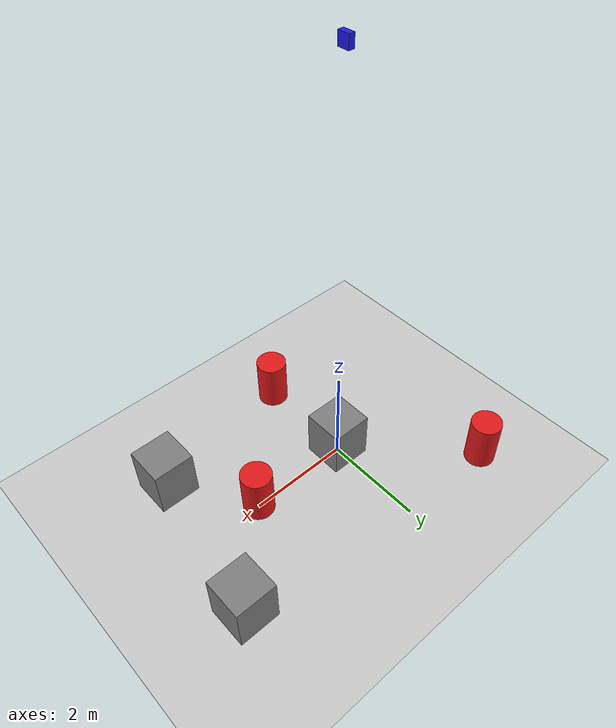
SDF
<?xml version="1.0" ?>
<sdf version="1.6">
  <world name="spartina_world">

    <!-- 조명 (햇빛) -->
    <include>
      <uri>model://sun</uri>
    </include>

    <!-- 바닥 -->
    <include>
      <uri>model://ground_plane</uri>
    </include>

    <model name="drone_camera">
      <!-- [이동버전] static=false + kinematic=true
           static 모델은 SetEntityState 로 옮겨도 pose 가 갱신되지 않는 경우가 있다.
           kinematic 은 중력/충돌력을 안 받으면서 SetWorldPose 로는 확실히 움직인다. -->
      <static>false</static>
      <pose>0 0 8 0 1.5708 0</pose>
      <link name="camera_link">
        <kinematic>true</kinematic>
        <gravity>false</gravity>
        <inertial>
          <mass>0.1</mass>
          <inertia><ixx>1e-4</ixx><iyy>1e-4</iyy><izz>1e-4</izz>
                   <ixy>0</ixy><ixz>0</ixz><iyz>0</iyz></inertia>
        </inertial>
        <!-- 드론 위치를 눈으로 확인하기 위한 작은 파란 박스 -->
        <visual name="visual">
          <geometry>
            <box><size>0.2 0.2 0.1</size></box>
          </geometry>
          <material>
            <ambient>0.1 0.1 0.8 1</ambient>
            <diffuse>0.1 0.1 0.9 1</diffuse>
          </material>
        </visual>
        <sensor type="camera" name="drone_camera_sensor">
          <update_rate>10</update_rate>
          <always_on>true</always_on>
          <camera>
            <horizontal_fov>1.047</horizontal_fov>
            <image>
              <width>640</width>
              <height>480</height>
              <format>R8G8B8</format>
            </image>
            <clip>
              <near>0.1</near>
              <far>100</far>
            </clip>
          </camera>
          <plugin name="drone_camera_controller" filename="libgazebo_ros_camera.so">
            <camera_name>drone</camera_name>
            <frame_name>drone_camera_optical</frame_name>
          </plugin>
        </sensor>
      </link>
    </model>

    <!-- 목표 1: 빨간 원기둥 (갯끈풀) — 기존 위치 유지, 기존 검증과 비교용 -->
    <model name="target_spartina">
      <static>true</static>
      <pose>2 0 0.5 0 0 0</pose>
      <link name="link">
        <collision name="collision">
          <geometry>
            <cylinder>
              <radius>0.3</radius>
              <length>1.0</length>
            </cylinder>
          </geometry>
        </collision>
        <visual name="visual">
          <geometry>
            <cylinder>
              <radius>0.3</radius>
              <length>1.0</length>
            </cylinder>
          </geometry>
          <material>
            <ambient>0.8 0.1 0.1 1</ambient>
            <diffuse>0.9 0.1 0.1 1</diffuse>
          </material>
        </visual>
      </link>
    </model>

    <!-- [Phase4 신규] 목표 2 -->
    <model name="target_spartina_2">
      <static>true</static>
      <pose>-2 2 0.5 0 0 0</pose>
      <link name="link">
        <collision name="collision">
          <geometry>
            <cylinder>
              <radius>0.3</radius>
              <length>1.0</length>
            </cylinder>
          </geometry>
        </collision>
        <visual name="visual">
          <geometry>
            <cylinder>
              <radius>0.3</radius>
              <length>1.0</length>
            </cylinder>
          </geometry>
          <material>
            <ambient>0.8 0.1 0.1 1</ambient>
            <diffuse>0.9 0.1 0.1 1</diffuse>
          </material>
        </visual>
      </link>
    </model>

    <!-- [Phase4 신규] 목표 3 -->
    <model name="target_spartina_3">
      <static>true</static>
      <pose>0 -2 0.5 0 0 0</pose>
      <link name="link">
        <collision name="collision">
          <geometry>
            <cylinder>
              <radius>0.3</radius>
              <length>1.0</length>
            </cylinder>
          </geometry>
        </collision>
        <visual name="visual">
          <geometry>
            <cylinder>
              <radius>0.3</radius>
              <length>1.0</length>
            </cylinder>
          </geometry>
          <material>
            <ambient>0.8 0.1 0.1 1</ambient>
            <diffuse>0.9 0.1 0.1 1</diffuse>
          </material>
        </visual>
      </link>
    </model>

    <!-- 장애물 1 : 로봇(-2,0)→목표(2,0) 경로 한가운데. 회피 시연용 -->
    <model name="obstacle_1">
      <static>true</static>
      <pose>0 0 0.5 0 0 0</pose>
      <link name="link">
        <collision name="collision">
          <geometry>
            <box><size>0.8 0.8 1.0</size></box>
          </geometry>
        </collision>
        <visual name="visual">
          <geometry>
            <box><size>0.8 0.8 1.0</size></box>
          </geometry>
          <material>
            <ambient>0.4 0.4 0.4 1</ambient>
            <diffuse>0.5 0.5 0.5 1</diffuse>
          </material>
        </visual>
      </link>
    </model>

    <!-- 장애물 2 -->
    <model name="obstacle_2">
      <static>true</static>
      <pose>3 -1.5 0.5 0 0 0</pose>
      <link name="link">
        <collision name="collision">
          <geometry>
            <box><size>0.8 0.8 1.0</size></box>
          </geometry>
        </collision>
        <visual name="visual">
          <geometry>
            <box><size>0.8 0.8 1.0</size></box>
          </geometry>
          <material>
            <ambient>0.4 0.4 0.4 1</ambient>
            <diffuse>0.5 0.5 0.5 1</diffuse>
          </material>
        </visual>
      </link>
    </model>

    <!-- 장애물 3 -->
    <model name="obstacle_3">
      <static>true</static>
      <pose>3.5 1.5 0.5 0 0 0</pose>
      <link name="link">
        <collision name="collision">
          <geometry>
            <box><size>0.8 0.8 1.0</size></box>
          </geometry>
        </collision>
        <visual name="visual">
          <geometry>
            <box><size>0.8 0.8 1.0</size></box>
          </geometry>
          <material>
            <ambient>0.4 0.4 0.4 1</ambient>
            <diffuse>0.5 0.5 0.5 1</diffuse>
          </material>
        </visual>
      </link>
    </model>

    <plugin name="gazebo_ros_state" filename="libgazebo_ros_state.so">
      <ros>
        <namespace>/gazebo</namespace>
      </ros>
      <update_rate>50.0</update_rate>
    </plugin>

  </world>
</sdf>
